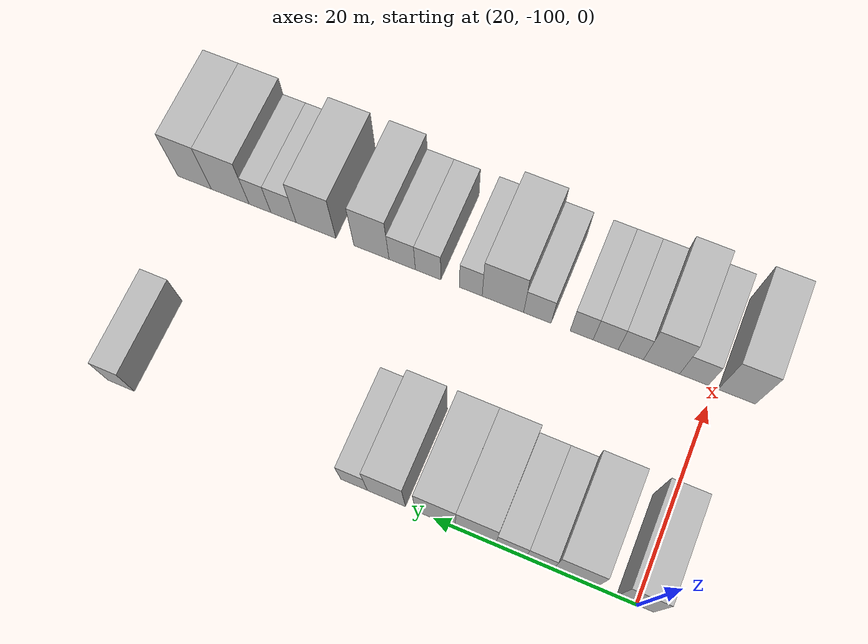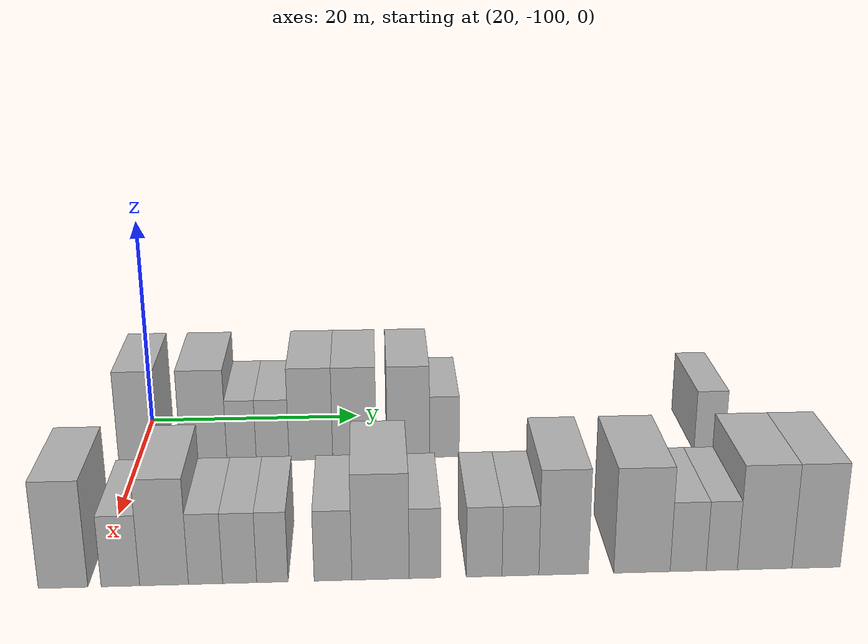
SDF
<sdf version="1.6">
 <world name="default">
  <model name="building_27">
   <static>1</static>
   <pose>25.0000 -99.8096 0 0.000000 0.000000 0.000000</pose>
   <link name="link">
    <pose>0 0 4.50 0 0 0</pose>
    <collision name="collision"><geometry><box><size>10.0000 3.6088 9.0000</size></box></geometry></collision>
    <visual name="visual">
     <cast_shadows>0</cast_shadows>
     <geometry><box><size>10.0000 3.6088 9.0000</size></box></geometry>
     <material>
      <script>
       <uri>model://HANNAS_wall/materials/scripts</uri>
       <uri>model://HANNAS_wall/materials/textures</uri>
       <name>vrc/HANNAS_wall</name>
      </script>
     </material>
    </visual>
   </link>
  </model>
  <model name="building_28">
   <static>1</static>
   <pose>25.0000 -93.9112 0 0.000000 0.000000 0.000000</pose>
   <link name="link">
    <pose>0 0 4.50 0 0 0</pose>
    <collision name="collision"><geometry><box><size>10.0000 4.1880 9.0000</size></box></geometry></collision>
    <visual name="visual">
     <cast_shadows>0</cast_shadows>
     <geometry><box><size>10.0000 4.1880 9.0000</size></box></geometry>
     <material>
      <script>
       <uri>model://HANNAS_wall/materials/scripts</uri>
       <uri>model://HANNAS_wall/materials/textures</uri>
       <name>vrc/HANNAS_wall</name>
      </script>
     </material>
    </visual>
   </link>
  </model>
  <model name="building_29">
   <static>1</static>
   <pose>25.0000 -90.4857 0 0.000000 0.000000 0.000000</pose>
   <link name="link">
    <pose>0 0 3.00 0 0 0</pose>
    <collision name="collision"><geometry><box><size>10.0000 2.6630 6.0000</size></box></geometry></collision>
    <visual name="visual">
     <cast_shadows>0</cast_shadows>
     <geometry><box><size>10.0000 2.6630 6.0000</size></box></geometry>
     <material>
      <script>
       <uri>model://HANNAS_wall/materials/scripts</uri>
       <uri>model://HANNAS_wall/materials/textures</uri>
       <name>vrc/HANNAS_wall</name>
      </script>
     </material>
    </visual>
   </link>
  </model>
  <model name="building_30">
   <static>1</static>
   <pose>25.0000 -87.6569 0 0.000000 0.000000 0.000000</pose>
   <link name="link">
    <pose>0 0 3.00 0 0 0</pose>
    <collision name="collision"><geometry><box><size>10.0000 2.9945 6.0000</size></box></geometry></collision>
    <visual name="visual">
     <cast_shadows>0</cast_shadows>
     <geometry><box><size>10.0000 2.9945 6.0000</size></box></geometry>
     <material>
      <script>
       <uri>model://HANNAS_wall/materials/scripts</uri>
       <uri>model://HANNAS_wall/materials/textures</uri>
       <name>vrc/HANNAS_wall</name>
      </script>
     </material>
    </visual>
   </link>
  </model>
  <model name="building_31">
   <static>1</static>
   <pose>25.0000 -84.1616 0 0.000000 0.000000 0.000000</pose>
   <link name="link">
    <pose>0 0 4.50 0 0 0</pose>
    <collision name="collision"><geometry><box><size>10.0000 3.9961 9.0000</size></box></geometry></collision>
    <visual name="visual">
     <cast_shadows>0</cast_shadows>
     <geometry><box><size>10.0000 3.9961 9.0000</size></box></geometry>
     <material>
      <script>
       <uri>model://HANNAS_wall/materials/scripts</uri>
       <uri>model://HANNAS_wall/materials/textures</uri>
       <name>vrc/HANNAS_wall</name>
      </script>
     </material>
    </visual>
   </link>
  </model>
  <model name="building_32">
   <static>1</static>
   <pose>25.0000 -80.1610 0 0.000000 0.000000 0.000000</pose>
   <link name="link">
    <pose>0 0 4.50 0 0 0</pose>
    <collision name="collision"><geometry><box><size>10.0000 4.0050 9.0000</size></box></geometry></collision>
    <visual name="visual">
     <cast_shadows>0</cast_shadows>
     <geometry><box><size>10.0000 4.0050 9.0000</size></box></geometry>
     <material>
      <script>
       <uri>model://HANNAS_wall/materials/scripts</uri>
       <uri>model://HANNAS_wall/materials/textures</uri>
       <name>vrc/HANNAS_wall</name>
      </script>
     </material>
    </visual>
   </link>
  </model>
  <model name="building_33">
   <static>1</static>
   <pose>25.0000 -75.2161 0 0.000000 0.000000 0.000000</pose>
   <link name="link">
    <pose>0 0 4.50 0 0 0</pose>
    <collision name="collision"><geometry><box><size>10.0000 3.8848 9.0000</size></box></geometry></collision>
    <visual name="visual">
     <cast_shadows>0</cast_shadows>
     <geometry><box><size>10.0000 3.8848 9.0000</size></box></geometry>
     <material>
      <script>
       <uri>model://HANNAS_wall/materials/scripts</uri>
       <uri>model://HANNAS_wall/materials/textures</uri>
       <name>vrc/HANNAS_wall</name>
      </script>
     </material>
    </visual>
   </link>
  </model>
  <model name="building_34">
   <static>1</static>
   <pose>25.0000 -71.9064 0 0.000000 0.000000 0.000000</pose>
   <link name="link">
    <pose>0 0 3.00 0 0 0</pose>
    <collision name="collision"><geometry><box><size>10.0000 2.7346 6.0000</size></box></geometry></collision>
    <visual name="visual">
     <cast_shadows>0</cast_shadows>
     <geometry><box><size>10.0000 2.7346 6.0000</size></box></geometry>
     <material>
      <script>
       <uri>model://HANNAS_wall/materials/scripts</uri>
       <uri>model://HANNAS_wall/materials/textures</uri>
       <name>vrc/HANNAS_wall</name>
      </script>
     </material>
    </visual>
   </link>
  </model>
  <model name="building_35">
   <static>1</static>
   <pose>25.0000 -47.2095 0 0.000000 0.000000 0.000000</pose>
   <link name="link">
    <pose>0 0 3.00 0 0 0</pose>
    <collision name="collision"><geometry><box><size>10.0000 2.8864 6.0000</size></box></geometry></collision>
    <visual name="visual">
     <cast_shadows>0</cast_shadows>
     <geometry><box><size>10.0000 2.8864 6.0000</size></box></geometry>
     <material>
      <script>
       <uri>model://HANNAS_wall/materials/scripts</uri>
       <uri>model://HANNAS_wall/materials/textures</uri>
       <name>vrc/HANNAS_wall</name>
      </script>
     </material>
    </visual>
   </link>
  </model>
  <model name="building_131">
   <static>1</static>
   <pose>47.0000 -102.3162 0 0.000000 0.000000 0.000000</pose>
   <link name="link">
    <pose>0 0 4.50 0 0 0</pose>
    <collision name="collision"><geometry><box><size>10.0000 3.7531 9.0000</size></box></geometry></collision>
    <visual name="visual">
     <cast_shadows>0</cast_shadows>
     <geometry><box><size>10.0000 3.7531 9.0000</size></box></geometry>
     <material>
      <script>
       <uri>model://HANNAS_wall/materials/scripts</uri>
       <uri>model://HANNAS_wall/materials/textures</uri>
       <name>vrc/HANNAS_wall</name>
      </script>
     </material>
    </visual>
   </link>
  </model>
  <model name="building_132">
   <static>1</static>
   <pose>47.0000 -97.9757 0 0.000000 0.000000 0.000000</pose>
   <link name="link">
    <pose>0 0 3.00 0 0 0</pose>
    <collision name="collision"><geometry><box><size>10.0000 2.9277 6.0000</size></box></geometry></collision>
    <visual name="visual">
     <cast_shadows>0</cast_shadows>
     <geometry><box><size>10.0000 2.9277 6.0000</size></box></geometry>
     <material>
      <script>
       <uri>model://HANNAS_wall/materials/scripts</uri>
       <uri>model://HANNAS_wall/materials/textures</uri>
       <name>vrc/HANNAS_wall</name>
      </script>
     </material>
    </visual>
   </link>
  </model>
  <model name="building_133">
   <static>1</static>
   <pose>47.0000 -94.6534 0 0.000000 0.000000 0.000000</pose>
   <link name="link">
    <pose>0 0 4.50 0 0 0</pose>
    <collision name="collision"><geometry><box><size>10.0000 3.7169 9.0000</size></box></geometry></collision>
    <visual name="visual">
     <cast_shadows>0</cast_shadows>
     <geometry><box><size>10.0000 3.7169 9.0000</size></box></geometry>
     <material>
      <script>
       <uri>model://HANNAS_wall/materials/scripts</uri>
       <uri>model://HANNAS_wall/materials/textures</uri>
       <name>vrc/HANNAS_wall</name>
      </script>
     </material>
    </visual>
   </link>
  </model>
  <model name="building_134">
   <static>1</static>
   <pose>47.0000 -91.4901 0 0.000000 0.000000 0.000000</pose>
   <link name="link">
    <pose>0 0 3.00 0 0 0</pose>
    <collision name="collision"><geometry><box><size>10.0000 2.6098 6.0000</size></box></geometry></collision>
    <visual name="visual">
     <cast_shadows>0</cast_shadows>
     <geometry><box><size>10.0000 2.6098 6.0000</size></box></geometry>
     <material>
      <script>
       <uri>model://HANNAS_wall/materials/scripts</uri>
       <uri>model://HANNAS_wall/materials/textures</uri>
       <name>vrc/HANNAS_wall</name>
      </script>
     </material>
    </visual>
   </link>
  </model>
  <model name="building_135">
   <static>1</static>
   <pose>47.0000 -88.8804 0 0.000000 0.000000 0.000000</pose>
   <link name="link">
    <pose>0 0 3.00 0 0 0</pose>
    <collision name="collision"><geometry><box><size>10.0000 2.6097 6.0000</size></box></geometry></collision>
    <visual name="visual">
     <cast_shadows>0</cast_shadows>
     <geometry><box><size>10.0000 2.6097 6.0000</size></box></geometry>
     <material>
      <script>
       <uri>model://HANNAS_wall/materials/scripts</uri>
       <uri>model://HANNAS_wall/materials/textures</uri>
       <name>vrc/HANNAS_wall</name>
      </script>
     </material>
    </visual>
   </link>
  </model>
  <model name="building_136">
   <static>1</static>
   <pose>47.0000 -86.3729 0 0.000000 0.000000 0.000000</pose>
   <link name="link">
    <pose>0 0 3.00 0 0 0</pose>
    <collision name="collision"><geometry><box><size>10.0000 2.4053 6.0000</size></box></geometry></collision>
    <visual name="visual">
     <cast_shadows>0</cast_shadows>
     <geometry><box><size>10.0000 2.4053 6.0000</size></box></geometry>
     <material>
      <script>
       <uri>model://HANNAS_wall/materials/scripts</uri>
       <uri>model://HANNAS_wall/materials/textures</uri>
       <name>vrc/HANNAS_wall</name>
      </script>
     </material>
    </visual>
   </link>
  </model>
  <model name="building_137">
   <static>1</static>
   <pose>47.0000 -81.7158 0 0.000000 0.000000 0.000000</pose>
   <link name="link">
    <pose>0 0 3.00 0 0 0</pose>
    <collision name="collision"><geometry><box><size>10.0000 2.9089 6.0000</size></box></geometry></collision>
    <visual name="visual">
     <cast_shadows>0</cast_shadows>
     <geometry><box><size>10.0000 2.9089 6.0000</size></box></geometry>
     <material>
      <script>
       <uri>model://HANNAS_wall/materials/scripts</uri>
       <uri>model://HANNAS_wall/materials/textures</uri>
       <name>vrc/HANNAS_wall</name>
      </script>
     </material>
    </visual>
   </link>
  </model>
  <model name="building_138">
   <static>1</static>
   <pose>47.0000 -78.0495 0 0.000000 0.000000 0.000000</pose>
   <link name="link">
    <pose>0 0 4.50 0 0 0</pose>
    <collision name="collision"><geometry><box><size>10.0000 4.4237 9.0000</size></box></geometry></collision>
    <visual name="visual">
     <cast_shadows>0</cast_shadows>
     <geometry><box><size>10.0000 4.4237 9.0000</size></box></geometry>
     <material>
      <script>
       <uri>model://HANNAS_wall/materials/scripts</uri>
       <uri>model://HANNAS_wall/materials/textures</uri>
       <name>vrc/HANNAS_wall</name>
      </script>
     </material>
    </visual>
   </link>
  </model>
  <model name="building_139">
   <static>1</static>
   <pose>47.0000 -74.6183 0 0.000000 0.000000 0.000000</pose>
   <link name="link">
    <pose>0 0 3.00 0 0 0</pose>
    <collision name="collision"><geometry><box><size>10.0000 2.4389 6.0000</size></box></geometry></collision>
    <visual name="visual">
     <cast_shadows>0</cast_shadows>
     <geometry><box><size>10.0000 2.4389 6.0000</size></box></geometry>
     <material>
      <script>
       <uri>model://HANNAS_wall/materials/scripts</uri>
       <uri>model://HANNAS_wall/materials/textures</uri>
       <name>vrc/HANNAS_wall</name>
      </script>
     </material>
    </visual>
   </link>
  </model>
  <model name="building_140">
   <static>1</static>
   <pose>47.0000 -70.0106 0 0.000000 0.000000 0.000000</pose>
   <link name="link">
    <pose>0 0 3.00 0 0 0</pose>
    <collision name="collision"><geometry><box><size>10.0000 2.7764 6.0000</size></box></geometry></collision>
    <visual name="visual">
     <cast_shadows>0</cast_shadows>
     <geometry><box><size>10.0000 2.7764 6.0000</size></box></geometry>
     <material>
      <script>
       <uri>model://HANNAS_wall/materials/scripts</uri>
       <uri>model://HANNAS_wall/materials/textures</uri>
       <name>vrc/HANNAS_wall</name>
      </script>
     </material>
    </visual>
   </link>
  </model>
  <model name="building_141">
   <static>1</static>
   <pose>47.0000 -67.1854 0 0.000000 0.000000 0.000000</pose>
   <link name="link">
    <pose>0 0 3.00 0 0 0</pose>
    <collision name="collision"><geometry><box><size>10.0000 2.8740 6.0000</size></box></geometry></collision>
    <visual name="visual">
     <cast_shadows>0</cast_shadows>
     <geometry><box><size>10.0000 2.8740 6.0000</size></box></geometry>
     <material>
      <script>
       <uri>model://HANNAS_wall/materials/scripts</uri>
       <uri>model://HANNAS_wall/materials/textures</uri>
       <name>vrc/HANNAS_wall</name>
      </script>
     </material>
    </visual>
   </link>
  </model>
  <model name="building_142">
   <static>1</static>
   <pose>47.0000 -63.8148 0 0.000000 0.000000 0.000000</pose>
   <link name="link">
    <pose>0 0 4.50 0 0 0</pose>
    <collision name="collision"><geometry><box><size>10.0000 3.8673 9.0000</size></box></geometry></collision>
    <visual name="visual">
     <cast_shadows>0</cast_shadows>
     <geometry><box><size>10.0000 3.8673 9.0000</size></box></geometry>
     <material>
      <script>
       <uri>model://HANNAS_wall/materials/scripts</uri>
       <uri>model://HANNAS_wall/materials/textures</uri>
       <name>vrc/HANNAS_wall</name>
      </script>
     </material>
    </visual>
   </link>
  </model>
  <model name="building_143">
   <static>1</static>
   <pose>47.0000 -57.6618 0 0.000000 0.000000 0.000000</pose>
   <link name="link">
    <pose>0 0 4.50 0 0 0</pose>
    <collision name="collision"><geometry><box><size>10.0000 4.4385 9.0000</size></box></geometry></collision>
    <visual name="visual">
     <cast_shadows>0</cast_shadows>
     <geometry><box><size>10.0000 4.4385 9.0000</size></box></geometry>
     <material>
      <script>
       <uri>model://HANNAS_wall/materials/scripts</uri>
       <uri>model://HANNAS_wall/materials/textures</uri>
       <name>vrc/HANNAS_wall</name>
      </script>
     </material>
    </visual>
   </link>
  </model>
  <model name="building_144">
   <static>1</static>
   <pose>47.0000 -54.0201 0 0.000000 0.000000 0.000000</pose>
   <link name="link">
    <pose>0 0 3.00 0 0 0</pose>
    <collision name="collision"><geometry><box><size>10.0000 2.8450 6.0000</size></box></geometry></collision>
    <visual name="visual">
     <cast_shadows>0</cast_shadows>
     <geometry><box><size>10.0000 2.8450 6.0000</size></box></geometry>
     <material>
      <script>
       <uri>model://HANNAS_wall/materials/scripts</uri>
       <uri>model://HANNAS_wall/materials/textures</uri>
       <name>vrc/HANNAS_wall</name>
      </script>
     </material>
    </visual>
   </link>
  </model>
  <model name="building_145">
   <static>1</static>
   <pose>47.0000 -51.3653 0 0.000000 0.000000 0.000000</pose>
   <link name="link">
    <pose>0 0 3.00 0 0 0</pose>
    <collision name="collision"><geometry><box><size>10.0000 2.4646 6.0000</size></box></geometry></collision>
    <visual name="visual">
     <cast_shadows>0</cast_shadows>
     <geometry><box><size>10.0000 2.4646 6.0000</size></box></geometry>
     <material>
      <script>
       <uri>model://HANNAS_wall/materials/scripts</uri>
       <uri>model://HANNAS_wall/materials/textures</uri>
       <name>vrc/HANNAS_wall</name>
      </script>
     </material>
    </visual>
   </link>
  </model>
  <model name="building_146">
   <static>1</static>
   <pose>47.0000 -47.9667 0 0.000000 0.000000 0.000000</pose>
   <link name="link">
    <pose>0 0 4.50 0 0 0</pose>
    <collision name="collision"><geometry><box><size>10.0000 4.3327 9.0000</size></box></geometry></collision>
    <visual name="visual">
     <cast_shadows>0</cast_shadows>
     <geometry><box><size>10.0000 4.3327 9.0000</size></box></geometry>
     <material>
      <script>
       <uri>model://HANNAS_wall/materials/scripts</uri>
       <uri>model://HANNAS_wall/materials/textures</uri>
       <name>vrc/HANNAS_wall</name>
      </script>
     </material>
    </visual>
   </link>
  </model>
  <model name="building_147">
   <static>1</static>
   <pose>47.0000 -43.8738 0 0.000000 0.000000 0.000000</pose>
   <link name="link">
    <pose>0 0 4.50 0 0 0</pose>
    <collision name="collision"><geometry><box><size>10.0000 3.8532 9.0000</size></box></geometry></collision>
    <visual name="visual">
     <cast_shadows>0</cast_shadows>
     <geometry><box><size>10.0000 3.8532 9.0000</size></box></geometry>
     <material>
      <script>
       <uri>model://HANNAS_wall/materials/scripts</uri>
       <uri>model://HANNAS_wall/materials/textures</uri>
       <name>vrc/HANNAS_wall</name>
      </script>
     </material>
    </visual>
   </link>
  </model>
 </world>
</sdf>
